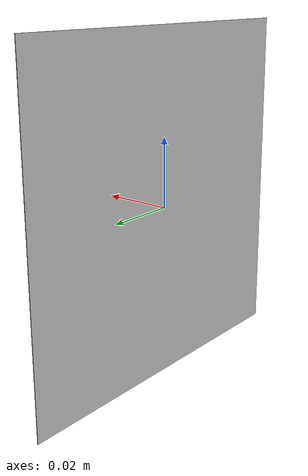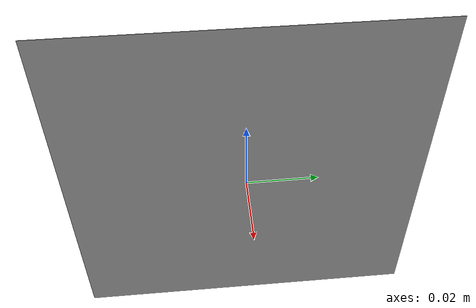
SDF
<?xml version="1.0"?>
<sdf version="1.6">
  <model name="aruco_marker_0">
    <static>false</static>
    <link name="link">
      <gravity>false</gravity>
      <inertial>
        <pose>0 0 0 0 0 0</pose>
        <mass>0.001</mass>
        <inertia>
          <ixx>3.7499999999999997e-06</ixx>
          <ixy>0.0</ixy>
          <ixz>0.0</ixz>
          <iyy>1.8750008333333333e-06</iyy>
          <iyz>0.0</iyz>
          <izz>1.8750008333333333e-06</izz>
        </inertia>
      </inertial>
      <visual name="front_visual">
        <pose>0.00005 0 0 0 0 0</pose>
        <geometry>
          <box>
            <size>0.0001 0.100 0.100</size>
          </box>
        </geometry>
        <material>
          <script>
            <uri>model://aruco_marker_0/materials/scripts</uri>
            <uri>model://aruco_marker_0/materials/textures</uri>
            <name>aruco_marker_0</name>
          </script>
        </material>
      </visual>
      <!-- Hide the marker from the back -->
      <visual name="rear_visual">
        <pose>-0.00005 0 0 0 0 0</pose>
        <geometry>
          <box>
            <size>0.0001 0.100 0.100</size>
          </box>
        </geometry>
        <plugin name="disable_shadows_plugin" filename="libdisable_shadows_plugin.so">
          <ros>
          </ros>
        </plugin>
      </visual>
      <collision name="collision">
        <pose>0 0 0 0 0 0</pose>
        <geometry>
          <box>
            <size>0.0001 0.100 0.100</size>
          </box>
        </geometry>
      </collision>
    </link>
  </model>
</sdf>
